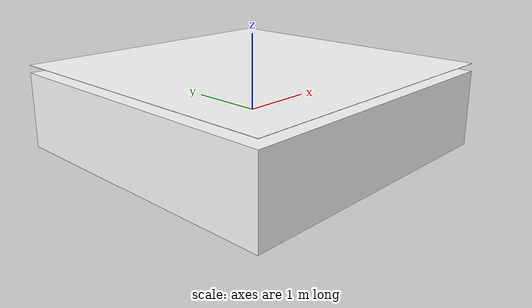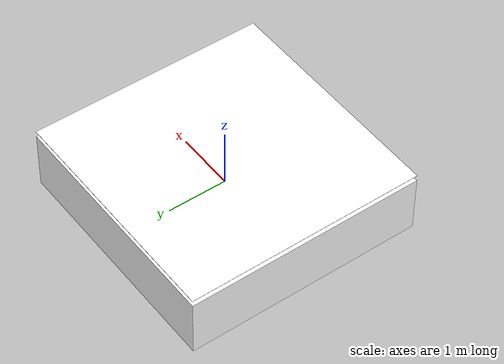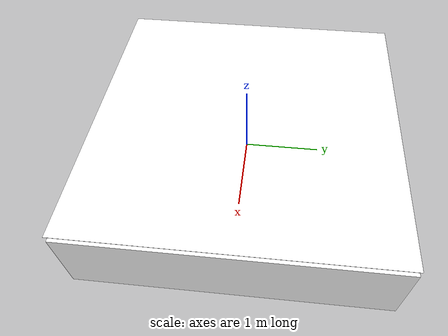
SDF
<?xml version='1.0'?>
<sdf version="1.9">

    <geometry>
        <box>
            <size>4 4 1</size>
        </box>
    </geometry>

    <model name="oda">
        <static>0</static>
        <link name="hlink">
            <collision name="collision">
                <geometry>
                    <box>
                        <size>4 4 1</size>
                    </box>
                </geometry>
            </collision>
            <visual name="oda_visual_top">
                <pose>0 0 0.6 0 0 0</pose>
                <geometry>
                    <plane>
                        <size>4 4</size>

                    </plane>
                </geometry>
                <material>
                    <!-- https://classic.gazebosim.org/tutorials?tut=color_model -->
                    <ambient>1 1 1 1</ambient>
                    <diffuse>1 1 1 1</diffuse>
                    <specular>1 1 1 1</specular>
                    <pbr>
                        <metal>
                          <albedo_map>model://oda/shapes1.png</albedo_map>
                          <roughness>0.6</roughness>
                          <metalness>0</metalness>
                        </metal>
                    </pbr>
                </material>
            </visual>
            <visual name="oda_visual_sides">
                <geometry>
                    <box>
                        <size>4 4 1</size>
                    </box>
                </geometry>
                <material>
                    <ambient>1 1 1 1</ambient>
                    <diffuse>1 1 1 1</diffuse>
                    <specular>1 1 1 1</specular>
                </material>
            </visual>
        </link>
    </model>

</sdf>
